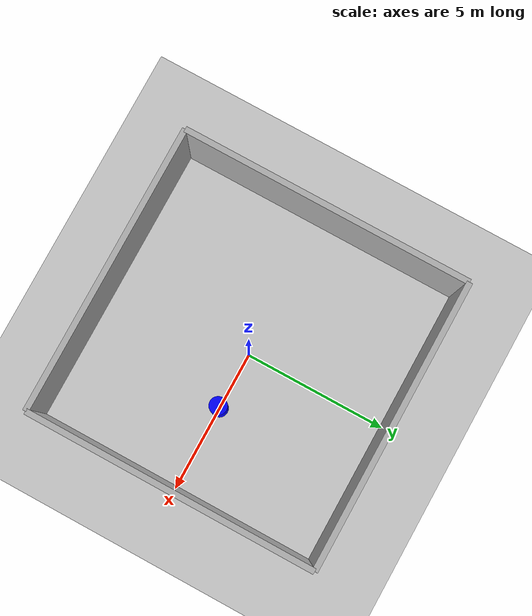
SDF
<?xml version="1.0" ?>
<sdf version="1.7">
  <world name="mmwave_test">
    <plugin
      filename="gz-sim-physics-system"
      name="gz::sim::systems::Physics">
    </plugin>
    <plugin
      filename="gz-sim-scene-broadcaster-system"
      name="gz::sim::systems::SceneBroadcaster">
    </plugin>
    <plugin
      filename="gz-sim-user-commands-system"
      name="gz::sim::systems::UserCommands">
    </plugin>
    <plugin
      filename="gz-sim-sensors-system"
      name="gz::sim::systems::Sensors">
    </plugin>

    <light type="directional" name="sun">
      <cast_shadows>true</cast_shadows>
      <pose>0 0 10 0 0 0</pose>
      <diffuse>0.8 0.8 0.8 1</diffuse>
      <specular>0.2 0.2 0.2 1</specular>
      <attenuation>
        <range>1000</range>
        <constant>0.9</constant>
        <linear>0.01</linear>
        <quadratic>0.001</quadratic>
      </attenuation>
      <direction>-0.5 0.1 -0.9</direction>
    </light>

    <model name="ground_plane">
      <static>true</static>
      <link name="link">
        <collision name="collision">
          <geometry>
            <plane>
              <normal>0 0 1</normal>
              <size>100 100</size>
            </plane>
          </geometry>
        </collision>
        <visual name="visual">
          <geometry>
            <plane>
              <normal>0 0 1</normal>
              <size>100 100</size>
            </plane>
          </geometry>
          <material>
            <ambient>0.8 0.8 0.8 1</ambient>
            <diffuse>0.8 0.8 0.8 1</diffuse>
            <specular>0.8 0.8 0.8 1</specular>
          </material>
        </visual>
      </link>
    </model>

    <!-- Walls -->
    <model name="wall_1">
      <static>true</static>
      <pose>5 0 1.5 0 0 0</pose>
      <link name="link">
        <collision name="collision">
          <geometry>
            <box>
              <size>0.2 10 3</size>
            </box>
          </geometry>
        </collision>
        <visual name="visual">
          <geometry>
            <box>
              <size>0.2 10 3</size>
            </box>
          </geometry>
          <material>
            <ambient>0.5 0.5 0.5 1</ambient>
            <diffuse>0.7 0.7 0.7 1</diffuse>
          </material>
        </visual>
      </link>
    </model>

    <model name="wall_2">
      <static>true</static>
      <pose>-5 0 1.5 0 0 0</pose>
      <link name="link">
        <collision name="collision">
          <geometry>
            <box>
              <size>0.2 10 3</size>
            </box>
          </geometry>
        </collision>
        <visual name="visual">
          <geometry>
            <box>
              <size>0.2 10 3</size>
            </box>
          </geometry>
          <material>
            <ambient>0.5 0.5 0.5 1</ambient>
            <diffuse>0.7 0.7 0.7 1</diffuse>
          </material>
        </visual>
      </link>
    </model>

    <model name="wall_3">
      <static>true</static>
      <pose>0 5 1.5 0 0 1.5708</pose>
      <link name="link">
        <collision name="collision">
          <geometry>
            <box>
              <size>0.2 10 3</size>
            </box>
          </geometry>
        </collision>
        <visual name="visual">
          <geometry>
            <box>
              <size>0.2 10 3</size>
            </box>
          </geometry>
          <material>
            <ambient>0.5 0.5 0.5 1</ambient>
            <diffuse>0.7 0.7 0.7 1</diffuse>
          </material>
        </visual>
      </link>
    </model>

    <model name="wall_4">
      <static>true</static>
      <pose>0 -5 1.5 0 0 1.5708</pose>
      <link name="link">
        <collision name="collision">
          <geometry>
            <box>
              <size>0.2 10 3</size>
            </box>
          </geometry>
        </collision>
        <visual name="visual">
          <geometry>
            <box>
              <size>0.2 10 3</size>
            </box>
          </geometry>
          <material>
            <ambient>0.5 0.5 0.5 1</ambient>
            <diffuse>0.7 0.7 0.7 1</diffuse>
          </material>
        </visual>
      </link>
    </model>

    <!-- Human/person model as a cylinder (simple representation) -->
    <model name="person">
      <pose>2 0 0.9 0 0 0</pose>
      <link name="link">
        <collision name="collision">
          <geometry>
            <cylinder>
              <radius>0.3</radius>
              <length>1.8</length>
            </cylinder>
          </geometry>
        </collision>
        <visual name="visual">
          <geometry>
            <cylinder>
              <radius>0.3</radius>
              <length>1.8</length>
            </cylinder>
          </geometry>
          <material>
            <ambient>0.0 0.0 1.0 1</ambient>
            <diffuse>0.0 0.0 1.0 1</diffuse>
          </material>
        </visual>
      </link>
    </model>

    <!-- First mmWave sensor -->
    <model name="mmwave_sensor_1">
      <static>true</static>
      <pose>0 0 1 0 0 0</pose>
      <link name="link">
        <sensor name="mmwave" type="lidar">
          <pose>0 0 0 0 0 0</pose>
          <always_on>true</always_on>
          <update_rate>10</update_rate>
          <ray>
            <scan>
              <horizontal>
                <samples>32</samples>
                <resolution>1</resolution>
                <min_angle>-0.785398</min_angle>
                <max_angle>0.785398</max_angle>
              </horizontal>
              <vertical>
                <samples>16</samples>
                <resolution>1</resolution>
                <min_angle>-0.261799</min_angle>
                <max_angle>0.261799</max_angle>
              </vertical>
            </scan>
            <range>
              <min>0.05</min>
              <max>50</max>
              <resolution>0.01</resolution>
            </range>
          </ray>
          <plugin
            filename="libMmWaveSensorPlugin.so"
            name="olympus_sim::MmWaveSensorPlugin">
            <horizontal_fov>1.5708</horizontal_fov>
            <vertical_fov>0.5236</vertical_fov>
            <horizontal_resolution>32</horizontal_resolution>
            <vertical_resolution>16</vertical_resolution>
            <min_range>0.05</min_range>
            <max_range>50</max_range>
            <noise_mean>0</noise_mean>
            <noise_stddev>0.01</noise_stddev>
            <default_rcs>1.0</default_rcs>
            <min_rcs>0.1</min_rcs>
            <max_radial_velocity>30.0</max_radial_velocity>
            <force_raycast>false</force_raycast>
            <visualize>true</visualize>
            <wsl_compat_mode>true</wsl_compat_mode>
            <use_point_clouds_only>false</use_point_clouds_only>
            <debug>true</debug>
          </plugin>
        </sensor>
      </link>
    </model>

    <!-- Second mmWave sensor -->
    <model name="mmwave_sensor_2">
      <static>true</static>
      <pose>5 0 1 0 0 3.14159</pose>
      <link name="link">
        <sensor name="mmwave2" type="lidar">
          <pose>0 0 0 0 0 0</pose>
          <always_on>true</always_on>
          <update_rate>10</update_rate>
          <ray>
            <scan>
              <horizontal>
                <samples>32</samples>
                <resolution>1</resolution>
                <min_angle>-0.785398</min_angle>
                <max_angle>0.785398</max_angle>
              </horizontal>
              <vertical>
                <samples>16</samples>
                <resolution>1</resolution>
                <min_angle>-0.261799</min_angle>
                <max_angle>0.261799</max_angle>
              </vertical>
            </scan>
            <range>
              <min>0.05</min>
              <max>50</max>
              <resolution>0.01</resolution>
            </range>
          </ray>
          <plugin
            filename="libMmWaveSensorPlugin.so"
            name="olympus_sim::MmWaveSensorPlugin">
            <horizontal_fov>1.5708</horizontal_fov>
            <vertical_fov>0.5236</vertical_fov>
            <horizontal_resolution>32</horizontal_resolution>
            <vertical_resolution>16</vertical_resolution>
            <min_range>0.05</min_range>
            <max_range>50</max_range>
            <noise_mean>0</noise_mean>
            <noise_stddev>0.01</noise_stddev>
            <default_rcs>1.0</default_rcs>
            <min_rcs>0.1</min_rcs>
            <max_radial_velocity>30.0</max_radial_velocity>
            <force_raycast>false</force_raycast>
            <visualize>true</visualize>
            <wsl_compat_mode>true</wsl_compat_mode>
            <use_point_clouds_only>false</use_point_clouds_only>
            <debug>true</debug>
          </plugin>
        </sensor>
      </link>
    </model>
  </world>
</sdf>
